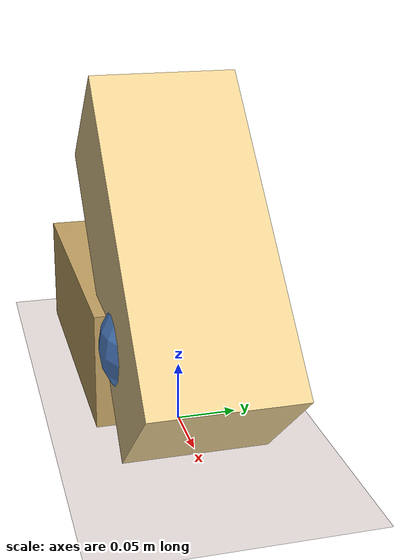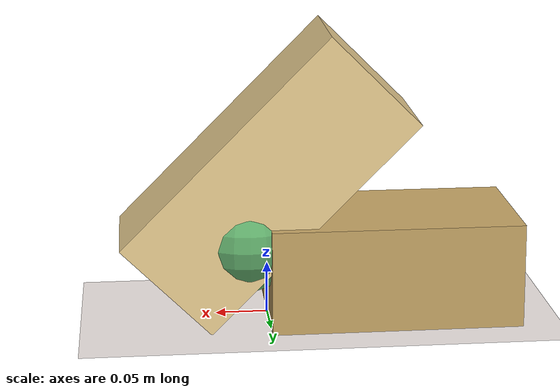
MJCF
<mujoco model="projectile_max_range_45">
  <compiler angle="radian" coordinate="local" autolimits="true"/>
  <option timestep="0.002" gravity="0 0 -3.507" integrator="implicitfast"
          impratio="3" cone="elliptic"/>

  <visual>
    <headlight diffuse="0 0 0" ambient="0.50 0.48 0.55" specular="0 0 0"/>
    <rgba haze="0.94 0.91 0.90 1"/>
    <global azimuth="120" elevation="-15" offwidth="1920" offheight="1080" fovy="28"/>
    <quality shadowsize="8192" offsamples="8"/>
    <map shadowclip="6" shadowscale="0.7"/>
  </visual>

  <asset>
    <texture type="skybox" builtin="flat"
             rgb1="0.74 0.68 0.86" rgb2="0.74 0.68 0.86"
             width="512" height="512" mark="none" markrgb="0 0 0"/>
    <material name="floor_mat" rgba="0.94 0.91 0.90 1" specular="0" shininess="0"/>
    <material name="wood" rgba="0.93 0.82 0.58 1" specular="0.1" shininess="0.1"/>
    <material name="wood_dark" rgba="0.78 0.65 0.40 1" specular="0.1" shininess="0.1"/>
    <material name="ball_blue" rgba="0.30 0.50 0.78 1" specular="0.35" shininess="0.4"/>
    <material name="ball_red" rgba="0.86 0.34 0.30 1" specular="0.35" shininess="0.4"/>
    <material name="ball_green" rgba="0.38 0.68 0.42 1" specular="0.35" shininess="0.4"/>
  </asset>

  <default>
    <geom friction="0.7 0.04 0.001" solref="0.005 1" solimp="0.95 0.99 0.001"/>
  </default>

  <worldbody>
    <light pos="0 0 4" dir="-0.30 0.55 -1" directional="true" castshadow="true"
           diffuse="0.85 0.82 0.78" specular="0.15 0.15 0.15"/>
    <light pos="0 0 3" dir="0.40 -0.30 -1" directional="true" castshadow="false"
           diffuse="0.28 0.28 0.34" specular="0 0 0"/>

    <geom name="floor" type="plane" size="4 4 0.1" material="floor_mat"
          contype="1" conaffinity="1"/>

    <!-- Launcher at left; mouth at (0, 0, 0.05). Visual only. -->
    <geom name="cannon_base" type="box" pos="-0.12 0 0.05"
          size="0.12 0.07 0.05" material="wood_dark"
          contype="0" conaffinity="0"/>
    <geom name="cannon_barrel" type="box" pos="0.00 0 0.14"
          euler="0 0.7854 0" size="0.14 0.06 0.06" material="wood"
          contype="0" conaffinity="0"/>

    <!-- Cluster at launcher mouth (visible in frame 1); tiny y offsets only. -->
    <body name="proj_30" pos="0.02 -0.02 0.08">
      <joint name="proj30_free" type="free"/>
      <geom name="proj30_geom" type="sphere" size="0.050" mass="0.08"
            material="ball_blue" contype="2" conaffinity="1"
            solref="0.004 1" solimp="0.99 0.99 0.0005"/>
    </body>

    <body name="proj_45" pos="0.02 0.00 0.08">
      <joint name="proj45_free" type="free"/>
      <geom name="proj45_geom" type="sphere" size="0.050" mass="0.08"
            material="ball_red" contype="2" conaffinity="1"
            solref="0.004 1" solimp="0.99 0.99 0.0005"/>
    </body>

    <body name="proj_60" pos="0.02 0.02 0.08">
      <joint name="proj60_free" type="free"/>
      <geom name="proj60_geom" type="sphere" size="0.050" mass="0.08"
            material="ball_green" contype="2" conaffinity="1"
            solref="0.004 1" solimp="0.99 0.99 0.0005"/>
    </body>

    <!-- Side view: launcher + full arcs + landings (x≈2.6 m, z≈1.0 m). -->
    <camera name="cam" pos="1.05 -2.35 0.48" fovy="28"
            xyaxes="1.000 0.000 0.000   0.000 0.000 1.000"/>
  </worldbody>
</mujoco>
